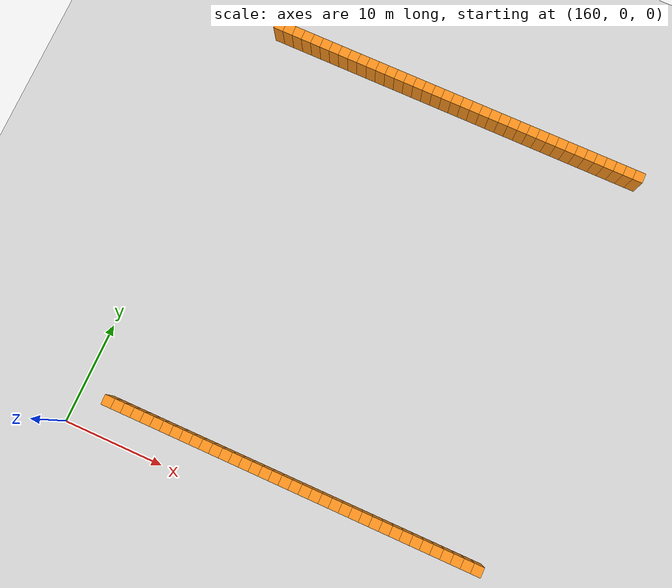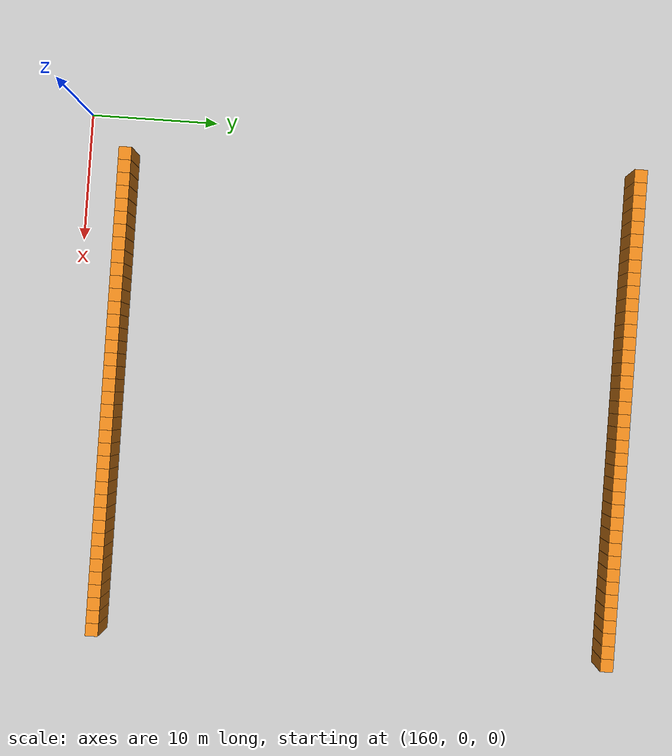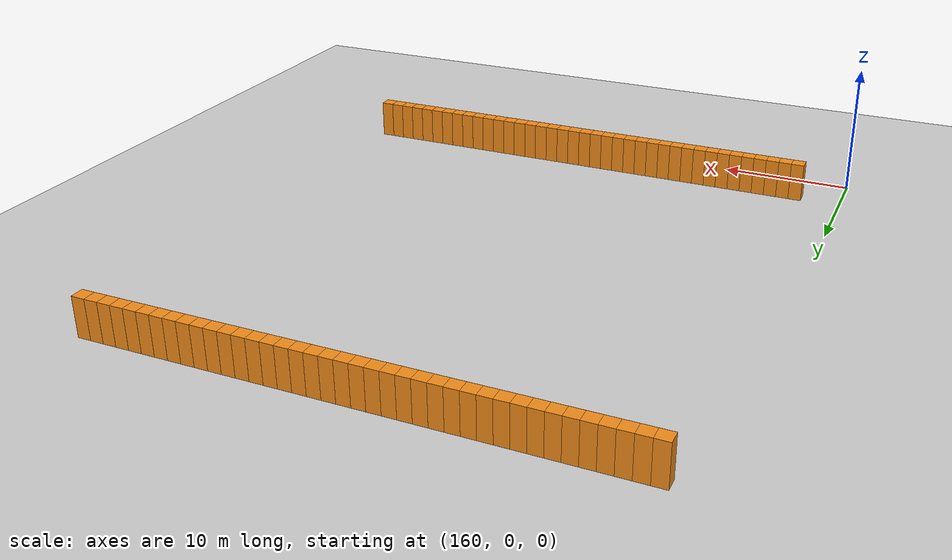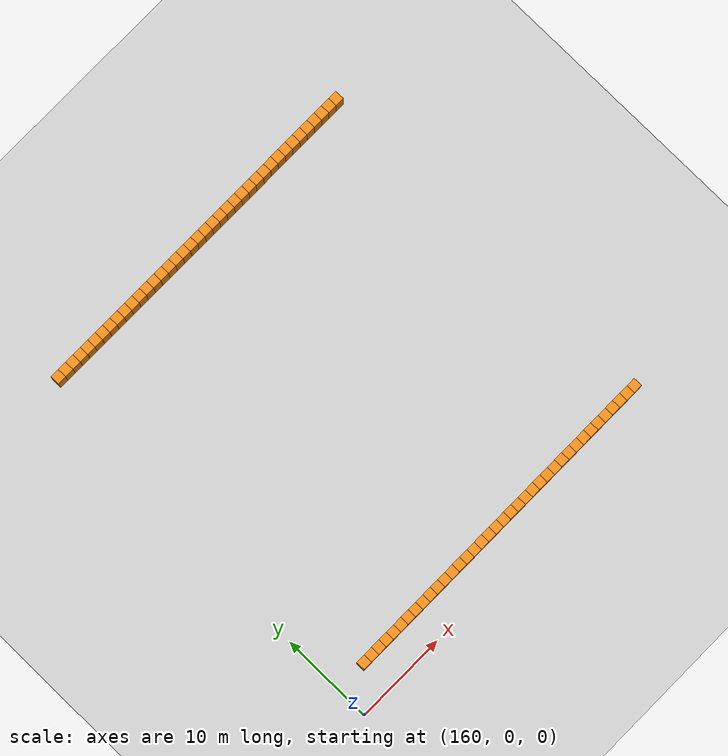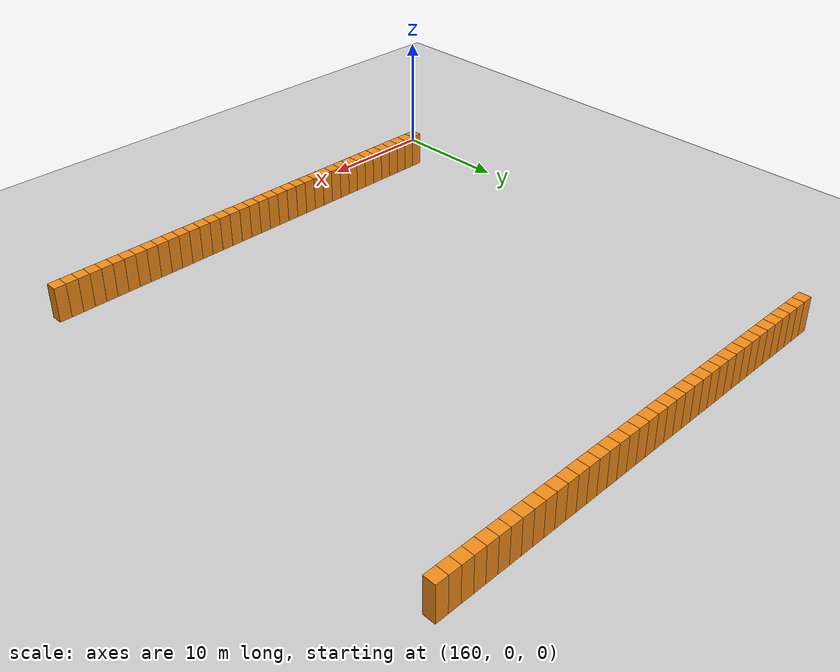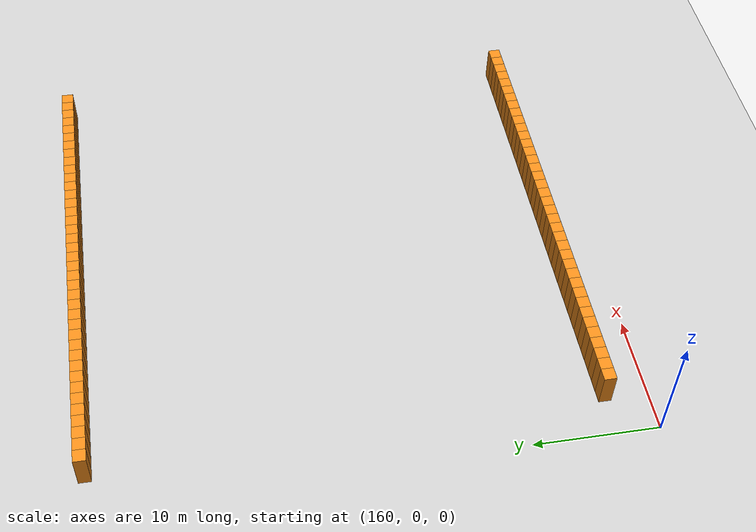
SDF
<sdf version="1.6">
 <world name="default">
  <include><uri>model://ground_plane</uri></include>
  <model name="unit_box_1692">
   <pose>162.50    43.50     1.50 0 0 0</pose>
   <static>1</static>
   <link name="link">
    <inertial>
     <mass>5000</mass>
     <inertia><ixx>200</ixx><ixy>0</ixy><ixz>0</ixz><iyy>200</iyy><iyz>0</iyz><izz>200</izz></inertia>
    </inertial>
    <collision name="collision"><geometry><box><size>1 1 3</size></box></geometry></collision>
    <visual name="visual">
     <geometry><box><size>1 1 3</size></box></geometry>
     <material>
      <script><name>Gazebo/Orange</name><uri>file://media/materials/scripts/gazebo.material</uri></script>
     </material>
    </visual>
   </link>
  </model>
  <model name="unit_box_1699">
   <pose>163.50     3.50     1.50 0 0 0</pose>
   <static>1</static>
   <link name="link">
    <inertial>
     <mass>5000</mass>
     <inertia><ixx>200</ixx><ixy>0</ixy><ixz>0</ixz><iyy>200</iyy><iyz>0</iyz><izz>200</izz></inertia>
    </inertial>
    <collision name="collision"><geometry><box><size>1 1 3</size></box></geometry></collision>
    <visual name="visual">
     <geometry><box><size>1 1 3</size></box></geometry>
     <material>
      <script><name>Gazebo/Orange</name><uri>file://media/materials/scripts/gazebo.material</uri></script>
     </material>
    </visual>
   </link>
  </model>
  <model name="unit_box_1700">
   <pose>163.50    43.50     1.50 0 0 0</pose>
   <static>1</static>
   <link name="link">
    <inertial>
     <mass>5000</mass>
     <inertia><ixx>200</ixx><ixy>0</ixy><ixz>0</ixz><iyy>200</iyy><iyz>0</iyz><izz>200</izz></inertia>
    </inertial>
    <collision name="collision"><geometry><box><size>1 1 3</size></box></geometry></collision>
    <visual name="visual">
     <geometry><box><size>1 1 3</size></box></geometry>
     <material>
      <script><name>Gazebo/Orange</name><uri>file://media/materials/scripts/gazebo.material</uri></script>
     </material>
    </visual>
   </link>
  </model>
  <model name="unit_box_1707">
   <pose>164.50     3.50     1.50 0 0 0</pose>
   <static>1</static>
   <link name="link">
    <inertial>
     <mass>5000</mass>
     <inertia><ixx>200</ixx><ixy>0</ixy><ixz>0</ixz><iyy>200</iyy><iyz>0</iyz><izz>200</izz></inertia>
    </inertial>
    <collision name="collision"><geometry><box><size>1 1 3</size></box></geometry></collision>
    <visual name="visual">
     <geometry><box><size>1 1 3</size></box></geometry>
     <material>
      <script><name>Gazebo/Orange</name><uri>file://media/materials/scripts/gazebo.material</uri></script>
     </material>
    </visual>
   </link>
  </model>
  <model name="unit_box_1708">
   <pose>164.50    43.50     1.50 0 0 0</pose>
   <static>1</static>
   <link name="link">
    <inertial>
     <mass>5000</mass>
     <inertia><ixx>200</ixx><ixy>0</ixy><ixz>0</ixz><iyy>200</iyy><iyz>0</iyz><izz>200</izz></inertia>
    </inertial>
    <collision name="collision"><geometry><box><size>1 1 3</size></box></geometry></collision>
    <visual name="visual">
     <geometry><box><size>1 1 3</size></box></geometry>
     <material>
      <script><name>Gazebo/Orange</name><uri>file://media/materials/scripts/gazebo.material</uri></script>
     </material>
    </visual>
   </link>
  </model>
  <model name="unit_box_1715">
   <pose>165.50     3.50     1.50 0 0 0</pose>
   <static>1</static>
   <link name="link">
    <inertial>
     <mass>5000</mass>
     <inertia><ixx>200</ixx><ixy>0</ixy><ixz>0</ixz><iyy>200</iyy><iyz>0</iyz><izz>200</izz></inertia>
    </inertial>
    <collision name="collision"><geometry><box><size>1 1 3</size></box></geometry></collision>
    <visual name="visual">
     <geometry><box><size>1 1 3</size></box></geometry>
     <material>
      <script><name>Gazebo/Orange</name><uri>file://media/materials/scripts/gazebo.material</uri></script>
     </material>
    </visual>
   </link>
  </model>
  <model name="unit_box_1716">
   <pose>165.50    43.50     1.50 0 0 0</pose>
   <static>1</static>
   <link name="link">
    <inertial>
     <mass>5000</mass>
     <inertia><ixx>200</ixx><ixy>0</ixy><ixz>0</ixz><iyy>200</iyy><iyz>0</iyz><izz>200</izz></inertia>
    </inertial>
    <collision name="collision"><geometry><box><size>1 1 3</size></box></geometry></collision>
    <visual name="visual">
     <geometry><box><size>1 1 3</size></box></geometry>
     <material>
      <script><name>Gazebo/Orange</name><uri>file://media/materials/scripts/gazebo.material</uri></script>
     </material>
    </visual>
   </link>
  </model>
  <model name="unit_box_1722">
   <pose>166.50     3.50     1.50 0 0 0</pose>
   <static>1</static>
   <link name="link">
    <inertial>
     <mass>5000</mass>
     <inertia><ixx>200</ixx><ixy>0</ixy><ixz>0</ixz><iyy>200</iyy><iyz>0</iyz><izz>200</izz></inertia>
    </inertial>
    <collision name="collision"><geometry><box><size>1 1 3</size></box></geometry></collision>
    <visual name="visual">
     <geometry><box><size>1 1 3</size></box></geometry>
     <material>
      <script><name>Gazebo/Orange</name><uri>file://media/materials/scripts/gazebo.material</uri></script>
     </material>
    </visual>
   </link>
  </model>
  <model name="unit_box_1723">
   <pose>166.50    43.50     1.50 0 0 0</pose>
   <static>1</static>
   <link name="link">
    <inertial>
     <mass>5000</mass>
     <inertia><ixx>200</ixx><ixy>0</ixy><ixz>0</ixz><iyy>200</iyy><iyz>0</iyz><izz>200</izz></inertia>
    </inertial>
    <collision name="collision"><geometry><box><size>1 1 3</size></box></geometry></collision>
    <visual name="visual">
     <geometry><box><size>1 1 3</size></box></geometry>
     <material>
      <script><name>Gazebo/Orange</name><uri>file://media/materials/scripts/gazebo.material</uri></script>
     </material>
    </visual>
   </link>
  </model>
  <model name="unit_box_1728">
   <pose>167.50     3.50     1.50 0 0 0</pose>
   <static>1</static>
   <link name="link">
    <inertial>
     <mass>5000</mass>
     <inertia><ixx>200</ixx><ixy>0</ixy><ixz>0</ixz><iyy>200</iyy><iyz>0</iyz><izz>200</izz></inertia>
    </inertial>
    <collision name="collision"><geometry><box><size>1 1 3</size></box></geometry></collision>
    <visual name="visual">
     <geometry><box><size>1 1 3</size></box></geometry>
     <material>
      <script><name>Gazebo/Orange</name><uri>file://media/materials/scripts/gazebo.material</uri></script>
     </material>
    </visual>
   </link>
  </model>
  <model name="unit_box_1729">
   <pose>167.50    43.50     1.50 0 0 0</pose>
   <static>1</static>
   <link name="link">
    <inertial>
     <mass>5000</mass>
     <inertia><ixx>200</ixx><ixy>0</ixy><ixz>0</ixz><iyy>200</iyy><iyz>0</iyz><izz>200</izz></inertia>
    </inertial>
    <collision name="collision"><geometry><box><size>1 1 3</size></box></geometry></collision>
    <visual name="visual">
     <geometry><box><size>1 1 3</size></box></geometry>
     <material>
      <script><name>Gazebo/Orange</name><uri>file://media/materials/scripts/gazebo.material</uri></script>
     </material>
    </visual>
   </link>
  </model>
  <model name="unit_box_1734">
   <pose>168.50     3.50     1.50 0 0 0</pose>
   <static>1</static>
   <link name="link">
    <inertial>
     <mass>5000</mass>
     <inertia><ixx>200</ixx><ixy>0</ixy><ixz>0</ixz><iyy>200</iyy><iyz>0</iyz><izz>200</izz></inertia>
    </inertial>
    <collision name="collision"><geometry><box><size>1 1 3</size></box></geometry></collision>
    <visual name="visual">
     <geometry><box><size>1 1 3</size></box></geometry>
     <material>
      <script><name>Gazebo/Orange</name><uri>file://media/materials/scripts/gazebo.material</uri></script>
     </material>
    </visual>
   </link>
  </model>
  <model name="unit_box_1735">
   <pose>168.50    43.50     1.50 0 0 0</pose>
   <static>1</static>
   <link name="link">
    <inertial>
     <mass>5000</mass>
     <inertia><ixx>200</ixx><ixy>0</ixy><ixz>0</ixz><iyy>200</iyy><iyz>0</iyz><izz>200</izz></inertia>
    </inertial>
    <collision name="collision"><geometry><box><size>1 1 3</size></box></geometry></collision>
    <visual name="visual">
     <geometry><box><size>1 1 3</size></box></geometry>
     <material>
      <script><name>Gazebo/Orange</name><uri>file://media/materials/scripts/gazebo.material</uri></script>
     </material>
    </visual>
   </link>
  </model>
  <model name="unit_box_1740">
   <pose>169.50     3.50     1.50 0 0 0</pose>
   <static>1</static>
   <link name="link">
    <inertial>
     <mass>5000</mass>
     <inertia><ixx>200</ixx><ixy>0</ixy><ixz>0</ixz><iyy>200</iyy><iyz>0</iyz><izz>200</izz></inertia>
    </inertial>
    <collision name="collision"><geometry><box><size>1 1 3</size></box></geometry></collision>
    <visual name="visual">
     <geometry><box><size>1 1 3</size></box></geometry>
     <material>
      <script><name>Gazebo/Orange</name><uri>file://media/materials/scripts/gazebo.material</uri></script>
     </material>
    </visual>
   </link>
  </model>
  <model name="unit_box_1741">
   <pose>169.50    43.50     1.50 0 0 0</pose>
   <static>1</static>
   <link name="link">
    <inertial>
     <mass>5000</mass>
     <inertia><ixx>200</ixx><ixy>0</ixy><ixz>0</ixz><iyy>200</iyy><iyz>0</iyz><izz>200</izz></inertia>
    </inertial>
    <collision name="collision"><geometry><box><size>1 1 3</size></box></geometry></collision>
    <visual name="visual">
     <geometry><box><size>1 1 3</size></box></geometry>
     <material>
      <script><name>Gazebo/Orange</name><uri>file://media/materials/scripts/gazebo.material</uri></script>
     </material>
    </visual>
   </link>
  </model>
  <model name="unit_box_1747">
   <pose>170.50     3.50     1.50 0 0 0</pose>
   <static>1</static>
   <link name="link">
    <inertial>
     <mass>5000</mass>
     <inertia><ixx>200</ixx><ixy>0</ixy><ixz>0</ixz><iyy>200</iyy><iyz>0</iyz><izz>200</izz></inertia>
    </inertial>
    <collision name="collision"><geometry><box><size>1 1 3</size></box></geometry></collision>
    <visual name="visual">
     <geometry><box><size>1 1 3</size></box></geometry>
     <material>
      <script><name>Gazebo/Orange</name><uri>file://media/materials/scripts/gazebo.material</uri></script>
     </material>
    </visual>
   </link>
  </model>
  <model name="unit_box_1748">
   <pose>170.50    43.50     1.50 0 0 0</pose>
   <static>1</static>
   <link name="link">
    <inertial>
     <mass>5000</mass>
     <inertia><ixx>200</ixx><ixy>0</ixy><ixz>0</ixz><iyy>200</iyy><iyz>0</iyz><izz>200</izz></inertia>
    </inertial>
    <collision name="collision"><geometry><box><size>1 1 3</size></box></geometry></collision>
    <visual name="visual">
     <geometry><box><size>1 1 3</size></box></geometry>
     <material>
      <script><name>Gazebo/Orange</name><uri>file://media/materials/scripts/gazebo.material</uri></script>
     </material>
    </visual>
   </link>
  </model>
  <model name="unit_box_1754">
   <pose>171.50     3.50     1.50 0 0 0</pose>
   <static>1</static>
   <link name="link">
    <inertial>
     <mass>5000</mass>
     <inertia><ixx>200</ixx><ixy>0</ixy><ixz>0</ixz><iyy>200</iyy><iyz>0</iyz><izz>200</izz></inertia>
    </inertial>
    <collision name="collision"><geometry><box><size>1 1 3</size></box></geometry></collision>
    <visual name="visual">
     <geometry><box><size>1 1 3</size></box></geometry>
     <material>
      <script><name>Gazebo/Orange</name><uri>file://media/materials/scripts/gazebo.material</uri></script>
     </material>
    </visual>
   </link>
  </model>
  <model name="unit_box_1755">
   <pose>171.50    43.50     1.50 0 0 0</pose>
   <static>1</static>
   <link name="link">
    <inertial>
     <mass>5000</mass>
     <inertia><ixx>200</ixx><ixy>0</ixy><ixz>0</ixz><iyy>200</iyy><iyz>0</iyz><izz>200</izz></inertia>
    </inertial>
    <collision name="collision"><geometry><box><size>1 1 3</size></box></geometry></collision>
    <visual name="visual">
     <geometry><box><size>1 1 3</size></box></geometry>
     <material>
      <script><name>Gazebo/Orange</name><uri>file://media/materials/scripts/gazebo.material</uri></script>
     </material>
    </visual>
   </link>
  </model>
  <model name="unit_box_1761">
   <pose>172.50     3.50     1.50 0 0 0</pose>
   <static>1</static>
   <link name="link">
    <inertial>
     <mass>5000</mass>
     <inertia><ixx>200</ixx><ixy>0</ixy><ixz>0</ixz><iyy>200</iyy><iyz>0</iyz><izz>200</izz></inertia>
    </inertial>
    <collision name="collision"><geometry><box><size>1 1 3</size></box></geometry></collision>
    <visual name="visual">
     <geometry><box><size>1 1 3</size></box></geometry>
     <material>
      <script><name>Gazebo/Orange</name><uri>file://media/materials/scripts/gazebo.material</uri></script>
     </material>
    </visual>
   </link>
  </model>
  <model name="unit_box_1762">
   <pose>172.50    43.50     1.50 0 0 0</pose>
   <static>1</static>
   <link name="link">
    <inertial>
     <mass>5000</mass>
     <inertia><ixx>200</ixx><ixy>0</ixy><ixz>0</ixz><iyy>200</iyy><iyz>0</iyz><izz>200</izz></inertia>
    </inertial>
    <collision name="collision"><geometry><box><size>1 1 3</size></box></geometry></collision>
    <visual name="visual">
     <geometry><box><size>1 1 3</size></box></geometry>
     <material>
      <script><name>Gazebo/Orange</name><uri>file://media/materials/scripts/gazebo.material</uri></script>
     </material>
    </visual>
   </link>
  </model>
  <model name="unit_box_1768">
   <pose>173.50     3.50     1.50 0 0 0</pose>
   <static>1</static>
   <link name="link">
    <inertial>
     <mass>5000</mass>
     <inertia><ixx>200</ixx><ixy>0</ixy><ixz>0</ixz><iyy>200</iyy><iyz>0</iyz><izz>200</izz></inertia>
    </inertial>
    <collision name="collision"><geometry><box><size>1 1 3</size></box></geometry></collision>
    <visual name="visual">
     <geometry><box><size>1 1 3</size></box></geometry>
     <material>
      <script><name>Gazebo/Orange</name><uri>file://media/materials/scripts/gazebo.material</uri></script>
     </material>
    </visual>
   </link>
  </model>
  <model name="unit_box_1769">
   <pose>173.50    43.50     1.50 0 0 0</pose>
   <static>1</static>
   <link name="link">
    <inertial>
     <mass>5000</mass>
     <inertia><ixx>200</ixx><ixy>0</ixy><ixz>0</ixz><iyy>200</iyy><iyz>0</iyz><izz>200</izz></inertia>
    </inertial>
    <collision name="collision"><geometry><box><size>1 1 3</size></box></geometry></collision>
    <visual name="visual">
     <geometry><box><size>1 1 3</size></box></geometry>
     <material>
      <script><name>Gazebo/Orange</name><uri>file://media/materials/scripts/gazebo.material</uri></script>
     </material>
    </visual>
   </link>
  </model>
  <model name="unit_box_1775">
   <pose>174.50     3.50     1.50 0 0 0</pose>
   <static>1</static>
   <link name="link">
    <inertial>
     <mass>5000</mass>
     <inertia><ixx>200</ixx><ixy>0</ixy><ixz>0</ixz><iyy>200</iyy><iyz>0</iyz><izz>200</izz></inertia>
    </inertial>
    <collision name="collision"><geometry><box><size>1 1 3</size></box></geometry></collision>
    <visual name="visual">
     <geometry><box><size>1 1 3</size></box></geometry>
     <material>
      <script><name>Gazebo/Orange</name><uri>file://media/materials/scripts/gazebo.material</uri></script>
     </material>
    </visual>
   </link>
  </model>
  <model name="unit_box_1776">
   <pose>174.50    43.50     1.50 0 0 0</pose>
   <static>1</static>
   <link name="link">
    <inertial>
     <mass>5000</mass>
     <inertia><ixx>200</ixx><ixy>0</ixy><ixz>0</ixz><iyy>200</iyy><iyz>0</iyz><izz>200</izz></inertia>
    </inertial>
    <collision name="collision"><geometry><box><size>1 1 3</size></box></geometry></collision>
    <visual name="visual">
     <geometry><box><size>1 1 3</size></box></geometry>
     <material>
      <script><name>Gazebo/Orange</name><uri>file://media/materials/scripts/gazebo.material</uri></script>
     </material>
    </visual>
   </link>
  </model>
  <model name="unit_box_1782">
   <pose>175.50     3.50     1.50 0 0 0</pose>
   <static>1</static>
   <link name="link">
    <inertial>
     <mass>5000</mass>
     <inertia><ixx>200</ixx><ixy>0</ixy><ixz>0</ixz><iyy>200</iyy><iyz>0</iyz><izz>200</izz></inertia>
    </inertial>
    <collision name="collision"><geometry><box><size>1 1 3</size></box></geometry></collision>
    <visual name="visual">
     <geometry><box><size>1 1 3</size></box></geometry>
     <material>
      <script><name>Gazebo/Orange</name><uri>file://media/materials/scripts/gazebo.material</uri></script>
     </material>
    </visual>
   </link>
  </model>
  <model name="unit_box_1783">
   <pose>175.50    43.50     1.50 0 0 0</pose>
   <static>1</static>
   <link name="link">
    <inertial>
     <mass>5000</mass>
     <inertia><ixx>200</ixx><ixy>0</ixy><ixz>0</ixz><iyy>200</iyy><iyz>0</iyz><izz>200</izz></inertia>
    </inertial>
    <collision name="collision"><geometry><box><size>1 1 3</size></box></geometry></collision>
    <visual name="visual">
     <geometry><box><size>1 1 3</size></box></geometry>
     <material>
      <script><name>Gazebo/Orange</name><uri>file://media/materials/scripts/gazebo.material</uri></script>
     </material>
    </visual>
   </link>
  </model>
  <model name="unit_box_1789">
   <pose>176.50     3.50     1.50 0 0 0</pose>
   <static>1</static>
   <link name="link">
    <inertial>
     <mass>5000</mass>
     <inertia><ixx>200</ixx><ixy>0</ixy><ixz>0</ixz><iyy>200</iyy><iyz>0</iyz><izz>200</izz></inertia>
    </inertial>
    <collision name="collision"><geometry><box><size>1 1 3</size></box></geometry></collision>
    <visual name="visual">
     <geometry><box><size>1 1 3</size></box></geometry>
     <material>
      <script><name>Gazebo/Orange</name><uri>file://media/materials/scripts/gazebo.material</uri></script>
     </material>
    </visual>
   </link>
  </model>
  <model name="unit_box_1790">
   <pose>176.50    43.50     1.50 0 0 0</pose>
   <static>1</static>
   <link name="link">
    <inertial>
     <mass>5000</mass>
     <inertia><ixx>200</ixx><ixy>0</ixy><ixz>0</ixz><iyy>200</iyy><iyz>0</iyz><izz>200</izz></inertia>
    </inertial>
    <collision name="collision"><geometry><box><size>1 1 3</size></box></geometry></collision>
    <visual name="visual">
     <geometry><box><size>1 1 3</size></box></geometry>
     <material>
      <script><name>Gazebo/Orange</name><uri>file://media/materials/scripts/gazebo.material</uri></script>
     </material>
    </visual>
   </link>
  </model>
  <model name="unit_box_1796">
   <pose>177.50     3.50     1.50 0 0 0</pose>
   <static>1</static>
   <link name="link">
    <inertial>
     <mass>5000</mass>
     <inertia><ixx>200</ixx><ixy>0</ixy><ixz>0</ixz><iyy>200</iyy><iyz>0</iyz><izz>200</izz></inertia>
    </inertial>
    <collision name="collision"><geometry><box><size>1 1 3</size></box></geometry></collision>
    <visual name="visual">
     <geometry><box><size>1 1 3</size></box></geometry>
     <material>
      <script><name>Gazebo/Orange</name><uri>file://media/materials/scripts/gazebo.material</uri></script>
     </material>
    </visual>
   </link>
  </model>
  <model name="unit_box_1797">
   <pose>177.50    43.50     1.50 0 0 0</pose>
   <static>1</static>
   <link name="link">
    <inertial>
     <mass>5000</mass>
     <inertia><ixx>200</ixx><ixy>0</ixy><ixz>0</ixz><iyy>200</iyy><iyz>0</iyz><izz>200</izz></inertia>
    </inertial>
    <collision name="collision"><geometry><box><size>1 1 3</size></box></geometry></collision>
    <visual name="visual">
     <geometry><box><size>1 1 3</size></box></geometry>
     <material>
      <script><name>Gazebo/Orange</name><uri>file://media/materials/scripts/gazebo.material</uri></script>
     </material>
    </visual>
   </link>
  </model>
  <model name="unit_box_1803">
   <pose>178.50     3.50     1.50 0 0 0</pose>
   <static>1</static>
   <link name="link">
    <inertial>
     <mass>5000</mass>
     <inertia><ixx>200</ixx><ixy>0</ixy><ixz>0</ixz><iyy>200</iyy><iyz>0</iyz><izz>200</izz></inertia>
    </inertial>
    <collision name="collision"><geometry><box><size>1 1 3</size></box></geometry></collision>
    <visual name="visual">
     <geometry><box><size>1 1 3</size></box></geometry>
     <material>
      <script><name>Gazebo/Orange</name><uri>file://media/materials/scripts/gazebo.material</uri></script>
     </material>
    </visual>
   </link>
  </model>
  <model name="unit_box_1804">
   <pose>178.50    43.50     1.50 0 0 0</pose>
   <static>1</static>
   <link name="link">
    <inertial>
     <mass>5000</mass>
     <inertia><ixx>200</ixx><ixy>0</ixy><ixz>0</ixz><iyy>200</iyy><iyz>0</iyz><izz>200</izz></inertia>
    </inertial>
    <collision name="collision"><geometry><box><size>1 1 3</size></box></geometry></collision>
    <visual name="visual">
     <geometry><box><size>1 1 3</size></box></geometry>
     <material>
      <script><name>Gazebo/Orange</name><uri>file://media/materials/scripts/gazebo.material</uri></script>
     </material>
    </visual>
   </link>
  </model>
  <model name="unit_box_1811">
   <pose>179.50     3.50     1.50 0 0 0</pose>
   <static>1</static>
   <link name="link">
    <inertial>
     <mass>5000</mass>
     <inertia><ixx>200</ixx><ixy>0</ixy><ixz>0</ixz><iyy>200</iyy><iyz>0</iyz><izz>200</izz></inertia>
    </inertial>
    <collision name="collision"><geometry><box><size>1 1 3</size></box></geometry></collision>
    <visual name="visual">
     <geometry><box><size>1 1 3</size></box></geometry>
     <material>
      <script><name>Gazebo/Orange</name><uri>file://media/materials/scripts/gazebo.material</uri></script>
     </material>
    </visual>
   </link>
  </model>
  <model name="unit_box_1812">
   <pose>179.50    43.50     1.50 0 0 0</pose>
   <static>1</static>
   <link name="link">
    <inertial>
     <mass>5000</mass>
     <inertia><ixx>200</ixx><ixy>0</ixy><ixz>0</ixz><iyy>200</iyy><iyz>0</iyz><izz>200</izz></inertia>
    </inertial>
    <collision name="collision"><geometry><box><size>1 1 3</size></box></geometry></collision>
    <visual name="visual">
     <geometry><box><size>1 1 3</size></box></geometry>
     <material>
      <script><name>Gazebo/Orange</name><uri>file://media/materials/scripts/gazebo.material</uri></script>
     </material>
    </visual>
   </link>
  </model>
  <model name="unit_box_1819">
   <pose>180.50     3.50     1.50 0 0 0</pose>
   <static>1</static>
   <link name="link">
    <inertial>
     <mass>5000</mass>
     <inertia><ixx>200</ixx><ixy>0</ixy><ixz>0</ixz><iyy>200</iyy><iyz>0</iyz><izz>200</izz></inertia>
    </inertial>
    <collision name="collision"><geometry><box><size>1 1 3</size></box></geometry></collision>
    <visual name="visual">
     <geometry><box><size>1 1 3</size></box></geometry>
     <material>
      <script><name>Gazebo/Orange</name><uri>file://media/materials/scripts/gazebo.material</uri></script>
     </material>
    </visual>
   </link>
  </model>
  <model name="unit_box_1820">
   <pose>180.50    43.50     1.50 0 0 0</pose>
   <static>1</static>
   <link name="link">
    <inertial>
     <mass>5000</mass>
     <inertia><ixx>200</ixx><ixy>0</ixy><ixz>0</ixz><iyy>200</iyy><iyz>0</iyz><izz>200</izz></inertia>
    </inertial>
    <collision name="collision"><geometry><box><size>1 1 3</size></box></geometry></collision>
    <visual name="visual">
     <geometry><box><size>1 1 3</size></box></geometry>
     <material>
      <script><name>Gazebo/Orange</name><uri>file://media/materials/scripts/gazebo.material</uri></script>
     </material>
    </visual>
   </link>
  </model>
  <model name="unit_box_1828">
   <pose>181.50     3.50     1.50 0 0 0</pose>
   <static>1</static>
   <link name="link">
    <inertial>
     <mass>5000</mass>
     <inertia><ixx>200</ixx><ixy>0</ixy><ixz>0</ixz><iyy>200</iyy><iyz>0</iyz><izz>200</izz></inertia>
    </inertial>
    <collision name="collision"><geometry><box><size>1 1 3</size></box></geometry></collision>
    <visual name="visual">
     <geometry><box><size>1 1 3</size></box></geometry>
     <material>
      <script><name>Gazebo/Orange</name><uri>file://media/materials/scripts/gazebo.material</uri></script>
     </material>
    </visual>
   </link>
  </model>
  <model name="unit_box_1829">
   <pose>181.50    43.50     1.50 0 0 0</pose>
   <static>1</static>
   <link name="link">
    <inertial>
     <mass>5000</mass>
     <inertia><ixx>200</ixx><ixy>0</ixy><ixz>0</ixz><iyy>200</iyy><iyz>0</iyz><izz>200</izz></inertia>
    </inertial>
    <collision name="collision"><geometry><box><size>1 1 3</size></box></geometry></collision>
    <visual name="visual">
     <geometry><box><size>1 1 3</size></box></geometry>
     <material>
      <script><name>Gazebo/Orange</name><uri>file://media/materials/scripts/gazebo.material</uri></script>
     </material>
    </visual>
   </link>
  </model>
  <model name="unit_box_1838">
   <pose>182.50     3.50     1.50 0 0 0</pose>
   <static>1</static>
   <link name="link">
    <inertial>
     <mass>5000</mass>
     <inertia><ixx>200</ixx><ixy>0</ixy><ixz>0</ixz><iyy>200</iyy><iyz>0</iyz><izz>200</izz></inertia>
    </inertial>
    <collision name="collision"><geometry><box><size>1 1 3</size></box></geometry></collision>
    <visual name="visual">
     <geometry><box><size>1 1 3</size></box></geometry>
     <material>
      <script><name>Gazebo/Orange</name><uri>file://media/materials/scripts/gazebo.material</uri></script>
     </material>
    </visual>
   </link>
  </model>
  <model name="unit_box_1839">
   <pose>182.50    43.50     1.50 0 0 0</pose>
   <static>1</static>
   <link name="link">
    <inertial>
     <mass>5000</mass>
     <inertia><ixx>200</ixx><ixy>0</ixy><ixz>0</ixz><iyy>200</iyy><iyz>0</iyz><izz>200</izz></inertia>
    </inertial>
    <collision name="collision"><geometry><box><size>1 1 3</size></box></geometry></collision>
    <visual name="visual">
     <geometry><box><size>1 1 3</size></box></geometry>
     <material>
      <script><name>Gazebo/Orange</name><uri>file://media/materials/scripts/gazebo.material</uri></script>
     </material>
    </visual>
   </link>
  </model>
  <model name="unit_box_1847">
   <pose>183.50     3.50     1.50 0 0 0</pose>
   <static>1</static>
   <link name="link">
    <inertial>
     <mass>5000</mass>
     <inertia><ixx>200</ixx><ixy>0</ixy><ixz>0</ixz><iyy>200</iyy><iyz>0</iyz><izz>200</izz></inertia>
    </inertial>
    <collision name="collision"><geometry><box><size>1 1 3</size></box></geometry></collision>
    <visual name="visual">
     <geometry><box><size>1 1 3</size></box></geometry>
     <material>
      <script><name>Gazebo/Orange</name><uri>file://media/materials/scripts/gazebo.material</uri></script>
     </material>
    </visual>
   </link>
  </model>
  <model name="unit_box_1848">
   <pose>183.50    43.50     1.50 0 0 0</pose>
   <static>1</static>
   <link name="link">
    <inertial>
     <mass>5000</mass>
     <inertia><ixx>200</ixx><ixy>0</ixy><ixz>0</ixz><iyy>200</iyy><iyz>0</iyz><izz>200</izz></inertia>
    </inertial>
    <collision name="collision"><geometry><box><size>1 1 3</size></box></geometry></collision>
    <visual name="visual">
     <geometry><box><size>1 1 3</size></box></geometry>
     <material>
      <script><name>Gazebo/Orange</name><uri>file://media/materials/scripts/gazebo.material</uri></script>
     </material>
    </visual>
   </link>
  </model>
  <model name="unit_box_1856">
   <pose>184.50     3.50     1.50 0 0 0</pose>
   <static>1</static>
   <link name="link">
    <inertial>
     <mass>5000</mass>
     <inertia><ixx>200</ixx><ixy>0</ixy><ixz>0</ixz><iyy>200</iyy><iyz>0</iyz><izz>200</izz></inertia>
    </inertial>
    <collision name="collision"><geometry><box><size>1 1 3</size></box></geometry></collision>
    <visual name="visual">
     <geometry><box><size>1 1 3</size></box></geometry>
     <material>
      <script><name>Gazebo/Orange</name><uri>file://media/materials/scripts/gazebo.material</uri></script>
     </material>
    </visual>
   </link>
  </model>
  <model name="unit_box_1857">
   <pose>184.50    43.50     1.50 0 0 0</pose>
   <static>1</static>
   <link name="link">
    <inertial>
     <mass>5000</mass>
     <inertia><ixx>200</ixx><ixy>0</ixy><ixz>0</ixz><iyy>200</iyy><iyz>0</iyz><izz>200</izz></inertia>
    </inertial>
    <collision name="collision"><geometry><box><size>1 1 3</size></box></geometry></collision>
    <visual name="visual">
     <geometry><box><size>1 1 3</size></box></geometry>
     <material>
      <script><name>Gazebo/Orange</name><uri>file://media/materials/scripts/gazebo.material</uri></script>
     </material>
    </visual>
   </link>
  </model>
  <model name="unit_box_1865">
   <pose>185.50     3.50     1.50 0 0 0</pose>
   <static>1</static>
   <link name="link">
    <inertial>
     <mass>5000</mass>
     <inertia><ixx>200</ixx><ixy>0</ixy><ixz>0</ixz><iyy>200</iyy><iyz>0</iyz><izz>200</izz></inertia>
    </inertial>
    <collision name="collision"><geometry><box><size>1 1 3</size></box></geometry></collision>
    <visual name="visual">
     <geometry><box><size>1 1 3</size></box></geometry>
     <material>
      <script><name>Gazebo/Orange</name><uri>file://media/materials/scripts/gazebo.material</uri></script>
     </material>
    </visual>
   </link>
  </model>
  <model name="unit_box_1866">
   <pose>185.50    43.50     1.50 0 0 0</pose>
   <static>1</static>
   <link name="link">
    <inertial>
     <mass>5000</mass>
     <inertia><ixx>200</ixx><ixy>0</ixy><ixz>0</ixz><iyy>200</iyy><iyz>0</iyz><izz>200</izz></inertia>
    </inertial>
    <collision name="collision"><geometry><box><size>1 1 3</size></box></geometry></collision>
    <visual name="visual">
     <geometry><box><size>1 1 3</size></box></geometry>
     <material>
      <script><name>Gazebo/Orange</name><uri>file://media/materials/scripts/gazebo.material</uri></script>
     </material>
    </visual>
   </link>
  </model>
  <model name="unit_box_1873">
   <pose>186.50     3.50     1.50 0 0 0</pose>
   <static>1</static>
   <link name="link">
    <inertial>
     <mass>5000</mass>
     <inertia><ixx>200</ixx><ixy>0</ixy><ixz>0</ixz><iyy>200</iyy><iyz>0</iyz><izz>200</izz></inertia>
    </inertial>
    <collision name="collision"><geometry><box><size>1 1 3</size></box></geometry></collision>
    <visual name="visual">
     <geometry><box><size>1 1 3</size></box></geometry>
     <material>
      <script><name>Gazebo/Orange</name><uri>file://media/materials/scripts/gazebo.material</uri></script>
     </material>
    </visual>
   </link>
  </model>
  <model name="unit_box_1874">
   <pose>186.50    43.50     1.50 0 0 0</pose>
   <static>1</static>
   <link name="link">
    <inertial>
     <mass>5000</mass>
     <inertia><ixx>200</ixx><ixy>0</ixy><ixz>0</ixz><iyy>200</iyy><iyz>0</iyz><izz>200</izz></inertia>
    </inertial>
    <collision name="collision"><geometry><box><size>1 1 3</size></box></geometry></collision>
    <visual name="visual">
     <geometry><box><size>1 1 3</size></box></geometry>
     <material>
      <script><name>Gazebo/Orange</name><uri>file://media/materials/scripts/gazebo.material</uri></script>
     </material>
    </visual>
   </link>
  </model>
  <model name="unit_box_1881">
   <pose>187.50     3.50     1.50 0 0 0</pose>
   <static>1</static>
   <link name="link">
    <inertial>
     <mass>5000</mass>
     <inertia><ixx>200</ixx><ixy>0</ixy><ixz>0</ixz><iyy>200</iyy><iyz>0</iyz><izz>200</izz></inertia>
    </inertial>
    <collision name="collision"><geometry><box><size>1 1 3</size></box></geometry></collision>
    <visual name="visual">
     <geometry><box><size>1 1 3</size></box></geometry>
     <material>
      <script><name>Gazebo/Orange</name><uri>file://media/materials/scripts/gazebo.material</uri></script>
     </material>
    </visual>
   </link>
  </model>
  <model name="unit_box_1882">
   <pose>187.50    43.50     1.50 0 0 0</pose>
   <static>1</static>
   <link name="link">
    <inertial>
     <mass>5000</mass>
     <inertia><ixx>200</ixx><ixy>0</ixy><ixz>0</ixz><iyy>200</iyy><iyz>0</iyz><izz>200</izz></inertia>
    </inertial>
    <collision name="collision"><geometry><box><size>1 1 3</size></box></geometry></collision>
    <visual name="visual">
     <geometry><box><size>1 1 3</size></box></geometry>
     <material>
      <script><name>Gazebo/Orange</name><uri>file://media/materials/scripts/gazebo.material</uri></script>
     </material>
    </visual>
   </link>
  </model>
  <model name="unit_box_1889">
   <pose>188.50     3.50     1.50 0 0 0</pose>
   <static>1</static>
   <link name="link">
    <inertial>
     <mass>5000</mass>
     <inertia><ixx>200</ixx><ixy>0</ixy><ixz>0</ixz><iyy>200</iyy><iyz>0</iyz><izz>200</izz></inertia>
    </inertial>
    <collision name="collision"><geometry><box><size>1 1 3</size></box></geometry></collision>
    <visual name="visual">
     <geometry><box><size>1 1 3</size></box></geometry>
     <material>
      <script><name>Gazebo/Orange</name><uri>file://media/materials/scripts/gazebo.material</uri></script>
     </material>
    </visual>
   </link>
  </model>
  <model name="unit_box_1890">
   <pose>188.50    43.50     1.50 0 0 0</pose>
   <static>1</static>
   <link name="link">
    <inertial>
     <mass>5000</mass>
     <inertia><ixx>200</ixx><ixy>0</ixy><ixz>0</ixz><iyy>200</iyy><iyz>0</iyz><izz>200</izz></inertia>
    </inertial>
    <collision name="collision"><geometry><box><size>1 1 3</size></box></geometry></collision>
    <visual name="visual">
     <geometry><box><size>1 1 3</size></box></geometry>
     <material>
      <script><name>Gazebo/Orange</name><uri>file://media/materials/scripts/gazebo.material</uri></script>
     </material>
    </visual>
   </link>
  </model>
  <model name="unit_box_1897">
   <pose>189.50     3.50     1.50 0 0 0</pose>
   <static>1</static>
   <link name="link">
    <inertial>
     <mass>5000</mass>
     <inertia><ixx>200</ixx><ixy>0</ixy><ixz>0</ixz><iyy>200</iyy><iyz>0</iyz><izz>200</izz></inertia>
    </inertial>
    <collision name="collision"><geometry><box><size>1 1 3</size></box></geometry></collision>
    <visual name="visual">
     <geometry><box><size>1 1 3</size></box></geometry>
     <material>
      <script><name>Gazebo/Orange</name><uri>file://media/materials/scripts/gazebo.material</uri></script>
     </material>
    </visual>
   </link>
  </model>
  <model name="unit_box_1898">
   <pose>189.50    43.50     1.50 0 0 0</pose>
   <static>1</static>
   <link name="link">
    <inertial>
     <mass>5000</mass>
     <inertia><ixx>200</ixx><ixy>0</ixy><ixz>0</ixz><iyy>200</iyy><iyz>0</iyz><izz>200</izz></inertia>
    </inertial>
    <collision name="collision"><geometry><box><size>1 1 3</size></box></geometry></collision>
    <visual name="visual">
     <geometry><box><size>1 1 3</size></box></geometry>
     <material>
      <script><name>Gazebo/Orange</name><uri>file://media/materials/scripts/gazebo.material</uri></script>
     </material>
    </visual>
   </link>
  </model>
  <model name="unit_box_1905">
   <pose>190.50     3.50     1.50 0 0 0</pose>
   <static>1</static>
   <link name="link">
    <inertial>
     <mass>5000</mass>
     <inertia><ixx>200</ixx><ixy>0</ixy><ixz>0</ixz><iyy>200</iyy><iyz>0</iyz><izz>200</izz></inertia>
    </inertial>
    <collision name="collision"><geometry><box><size>1 1 3</size></box></geometry></collision>
    <visual name="visual">
     <geometry><box><size>1 1 3</size></box></geometry>
     <material>
      <script><name>Gazebo/Orange</name><uri>file://media/materials/scripts/gazebo.material</uri></script>
     </material>
    </visual>
   </link>
  </model>
  <model name="unit_box_1906">
   <pose>190.50    43.50     1.50 0 0 0</pose>
   <static>1</static>
   <link name="link">
    <inertial>
     <mass>5000</mass>
     <inertia><ixx>200</ixx><ixy>0</ixy><ixz>0</ixz><iyy>200</iyy><iyz>0</iyz><izz>200</izz></inertia>
    </inertial>
    <collision name="collision"><geometry><box><size>1 1 3</size></box></geometry></collision>
    <visual name="visual">
     <geometry><box><size>1 1 3</size></box></geometry>
     <material>
      <script><name>Gazebo/Orange</name><uri>file://media/materials/scripts/gazebo.material</uri></script>
     </material>
    </visual>
   </link>
  </model>
  <model name="unit_box_1913">
   <pose>191.50     3.50     1.50 0 0 0</pose>
   <static>1</static>
   <link name="link">
    <inertial>
     <mass>5000</mass>
     <inertia><ixx>200</ixx><ixy>0</ixy><ixz>0</ixz><iyy>200</iyy><iyz>0</iyz><izz>200</izz></inertia>
    </inertial>
    <collision name="collision"><geometry><box><size>1 1 3</size></box></geometry></collision>
    <visual name="visual">
     <geometry><box><size>1 1 3</size></box></geometry>
     <material>
      <script><name>Gazebo/Orange</name><uri>file://media/materials/scripts/gazebo.material</uri></script>
     </material>
    </visual>
   </link>
  </model>
  <model name="unit_box_1914">
   <pose>191.50    43.50     1.50 0 0 0</pose>
   <static>1</static>
   <link name="link">
    <inertial>
     <mass>5000</mass>
     <inertia><ixx>200</ixx><ixy>0</ixy><ixz>0</ixz><iyy>200</iyy><iyz>0</iyz><izz>200</izz></inertia>
    </inertial>
    <collision name="collision"><geometry><box><size>1 1 3</size></box></geometry></collision>
    <visual name="visual">
     <geometry><box><size>1 1 3</size></box></geometry>
     <material>
      <script><name>Gazebo/Orange</name><uri>file://media/materials/scripts/gazebo.material</uri></script>
     </material>
    </visual>
   </link>
  </model>
  <model name="unit_box_1921">
   <pose>192.50     3.50     1.50 0 0 0</pose>
   <static>1</static>
   <link name="link">
    <inertial>
     <mass>5000</mass>
     <inertia><ixx>200</ixx><ixy>0</ixy><ixz>0</ixz><iyy>200</iyy><iyz>0</iyz><izz>200</izz></inertia>
    </inertial>
    <collision name="collision"><geometry><box><size>1 1 3</size></box></geometry></collision>
    <visual name="visual">
     <geometry><box><size>1 1 3</size></box></geometry>
     <material>
      <script><name>Gazebo/Orange</name><uri>file://media/materials/scripts/gazebo.material</uri></script>
     </material>
    </visual>
   </link>
  </model>
  <model name="unit_box_1922">
   <pose>192.50    43.50     1.50 0 0 0</pose>
   <static>1</static>
   <link name="link">
    <inertial>
     <mass>5000</mass>
     <inertia><ixx>200</ixx><ixy>0</ixy><ixz>0</ixz><iyy>200</iyy><iyz>0</iyz><izz>200</izz></inertia>
    </inertial>
    <collision name="collision"><geometry><box><size>1 1 3</size></box></geometry></collision>
    <visual name="visual">
     <geometry><box><size>1 1 3</size></box></geometry>
     <material>
      <script><name>Gazebo/Orange</name><uri>file://media/materials/scripts/gazebo.material</uri></script>
     </material>
    </visual>
   </link>
  </model>
  <model name="unit_box_1930">
   <pose>193.50     3.50     1.50 0 0 0</pose>
   <static>1</static>
   <link name="link">
    <inertial>
     <mass>5000</mass>
     <inertia><ixx>200</ixx><ixy>0</ixy><ixz>0</ixz><iyy>200</iyy><iyz>0</iyz><izz>200</izz></inertia>
    </inertial>
    <collision name="collision"><geometry><box><size>1 1 3</size></box></geometry></collision>
    <visual name="visual">
     <geometry><box><size>1 1 3</size></box></geometry>
     <material>
      <script><name>Gazebo/Orange</name><uri>file://media/materials/scripts/gazebo.material</uri></script>
     </material>
    </visual>
   </link>
  </model>
  <model name="unit_box_1931">
   <pose>193.50    43.50     1.50 0 0 0</pose>
   <static>1</static>
   <link name="link">
    <inertial>
     <mass>5000</mass>
     <inertia><ixx>200</ixx><ixy>0</ixy><ixz>0</ixz><iyy>200</iyy><iyz>0</iyz><izz>200</izz></inertia>
    </inertial>
    <collision name="collision"><geometry><box><size>1 1 3</size></box></geometry></collision>
    <visual name="visual">
     <geometry><box><size>1 1 3</size></box></geometry>
     <material>
      <script><name>Gazebo/Orange</name><uri>file://media/materials/scripts/gazebo.material</uri></script>
     </material>
    </visual>
   </link>
  </model>
  <model name="unit_box_1939">
   <pose>194.50     3.50     1.50 0 0 0</pose>
   <static>1</static>
   <link name="link">
    <inertial>
     <mass>5000</mass>
     <inertia><ixx>200</ixx><ixy>0</ixy><ixz>0</ixz><iyy>200</iyy><iyz>0</iyz><izz>200</izz></inertia>
    </inertial>
    <collision name="collision"><geometry><box><size>1 1 3</size></box></geometry></collision>
    <visual name="visual">
     <geometry><box><size>1 1 3</size></box></geometry>
     <material>
      <script><name>Gazebo/Orange</name><uri>file://media/materials/scripts/gazebo.material</uri></script>
     </material>
    </visual>
   </link>
  </model>
  <model name="unit_box_1940">
   <pose>194.50    43.50     1.50 0 0 0</pose>
   <static>1</static>
   <link name="link">
    <inertial>
     <mass>5000</mass>
     <inertia><ixx>200</ixx><ixy>0</ixy><ixz>0</ixz><iyy>200</iyy><iyz>0</iyz><izz>200</izz></inertia>
    </inertial>
    <collision name="collision"><geometry><box><size>1 1 3</size></box></geometry></collision>
    <visual name="visual">
     <geometry><box><size>1 1 3</size></box></geometry>
     <material>
      <script><name>Gazebo/Orange</name><uri>file://media/materials/scripts/gazebo.material</uri></script>
     </material>
    </visual>
   </link>
  </model>
  <model name="unit_box_1948">
   <pose>195.50     3.50     1.50 0 0 0</pose>
   <static>1</static>
   <link name="link">
    <inertial>
     <mass>5000</mass>
     <inertia><ixx>200</ixx><ixy>0</ixy><ixz>0</ixz><iyy>200</iyy><iyz>0</iyz><izz>200</izz></inertia>
    </inertial>
    <collision name="collision"><geometry><box><size>1 1 3</size></box></geometry></collision>
    <visual name="visual">
     <geometry><box><size>1 1 3</size></box></geometry>
     <material>
      <script><name>Gazebo/Orange</name><uri>file://media/materials/scripts/gazebo.material</uri></script>
     </material>
    </visual>
   </link>
  </model>
  <model name="unit_box_1949">
   <pose>195.50    43.50     1.50 0 0 0</pose>
   <static>1</static>
   <link name="link">
    <inertial>
     <mass>5000</mass>
     <inertia><ixx>200</ixx><ixy>0</ixy><ixz>0</ixz><iyy>200</iyy><iyz>0</iyz><izz>200</izz></inertia>
    </inertial>
    <collision name="collision"><geometry><box><size>1 1 3</size></box></geometry></collision>
    <visual name="visual">
     <geometry><box><size>1 1 3</size></box></geometry>
     <material>
      <script><name>Gazebo/Orange</name><uri>file://media/materials/scripts/gazebo.material</uri></script>
     </material>
    </visual>
   </link>
  </model>
  <model name="unit_box_1957">
   <pose>196.50     3.50     1.50 0 0 0</pose>
   <static>1</static>
   <link name="link">
    <inertial>
     <mass>5000</mass>
     <inertia><ixx>200</ixx><ixy>0</ixy><ixz>0</ixz><iyy>200</iyy><iyz>0</iyz><izz>200</izz></inertia>
    </inertial>
    <collision name="collision"><geometry><box><size>1 1 3</size></box></geometry></collision>
    <visual name="visual">
     <geometry><box><size>1 1 3</size></box></geometry>
     <material>
      <script><name>Gazebo/Orange</name><uri>file://media/materials/scripts/gazebo.material</uri></script>
     </material>
    </visual>
   </link>
  </model>
  <model name="unit_box_1958">
   <pose>196.50    43.50     1.50 0 0 0</pose>
   <static>1</static>
   <link name="link">
    <inertial>
     <mass>5000</mass>
     <inertia><ixx>200</ixx><ixy>0</ixy><ixz>0</ixz><iyy>200</iyy><iyz>0</iyz><izz>200</izz></inertia>
    </inertial>
    <collision name="collision"><geometry><box><size>1 1 3</size></box></geometry></collision>
    <visual name="visual">
     <geometry><box><size>1 1 3</size></box></geometry>
     <material>
      <script><name>Gazebo/Orange</name><uri>file://media/materials/scripts/gazebo.material</uri></script>
     </material>
    </visual>
   </link>
  </model>
  <model name="unit_box_1966">
   <pose>197.50     3.50     1.50 0 0 0</pose>
   <static>1</static>
   <link name="link">
    <inertial>
     <mass>5000</mass>
     <inertia><ixx>200</ixx><ixy>0</ixy><ixz>0</ixz><iyy>200</iyy><iyz>0</iyz><izz>200</izz></inertia>
    </inertial>
    <collision name="collision"><geometry><box><size>1 1 3</size></box></geometry></collision>
    <visual name="visual">
     <geometry><box><size>1 1 3</size></box></geometry>
     <material>
      <script><name>Gazebo/Orange</name><uri>file://media/materials/scripts/gazebo.material</uri></script>
     </material>
    </visual>
   </link>
  </model>
  <model name="unit_box_1967">
   <pose>197.50    43.50     1.50 0 0 0</pose>
   <static>1</static>
   <link name="link">
    <inertial>
     <mass>5000</mass>
     <inertia><ixx>200</ixx><ixy>0</ixy><ixz>0</ixz><iyy>200</iyy><iyz>0</iyz><izz>200</izz></inertia>
    </inertial>
    <collision name="collision"><geometry><box><size>1 1 3</size></box></geometry></collision>
    <visual name="visual">
     <geometry><box><size>1 1 3</size></box></geometry>
     <material>
      <script><name>Gazebo/Orange</name><uri>file://media/materials/scripts/gazebo.material</uri></script>
     </material>
    </visual>
   </link>
  </model>
  <model name="unit_box_1975">
   <pose>198.50     3.50     1.50 0 0 0</pose>
   <static>1</static>
   <link name="link">
    <inertial>
     <mass>5000</mass>
     <inertia><ixx>200</ixx><ixy>0</ixy><ixz>0</ixz><iyy>200</iyy><iyz>0</iyz><izz>200</izz></inertia>
    </inertial>
    <collision name="collision"><geometry><box><size>1 1 3</size></box></geometry></collision>
    <visual name="visual">
     <geometry><box><size>1 1 3</size></box></geometry>
     <material>
      <script><name>Gazebo/Orange</name><uri>file://media/materials/scripts/gazebo.material</uri></script>
     </material>
    </visual>
   </link>
  </model>
  <model name="unit_box_1976">
   <pose>198.50    43.50     1.50 0 0 0</pose>
   <static>1</static>
   <link name="link">
    <inertial>
     <mass>5000</mass>
     <inertia><ixx>200</ixx><ixy>0</ixy><ixz>0</ixz><iyy>200</iyy><iyz>0</iyz><izz>200</izz></inertia>
    </inertial>
    <collision name="collision"><geometry><box><size>1 1 3</size></box></geometry></collision>
    <visual name="visual">
     <geometry><box><size>1 1 3</size></box></geometry>
     <material>
      <script><name>Gazebo/Orange</name><uri>file://media/materials/scripts/gazebo.material</uri></script>
     </material>
    </visual>
   </link>
  </model>
  <model name="unit_box_1984">
   <pose>199.50     3.50     1.50 0 0 0</pose>
   <static>1</static>
   <link name="link">
    <inertial>
     <mass>5000</mass>
     <inertia><ixx>200</ixx><ixy>0</ixy><ixz>0</ixz><iyy>200</iyy><iyz>0</iyz><izz>200</izz></inertia>
    </inertial>
    <collision name="collision"><geometry><box><size>1 1 3</size></box></geometry></collision>
    <visual name="visual">
     <geometry><box><size>1 1 3</size></box></geometry>
     <material>
      <script><name>Gazebo/Orange</name><uri>file://media/materials/scripts/gazebo.material</uri></script>
     </material>
    </visual>
   </link>
  </model>
  <model name="unit_box_1985">
   <pose>199.50    43.50     1.50 0 0 0</pose>
   <static>1</static>
   <link name="link">
    <inertial>
     <mass>5000</mass>
     <inertia><ixx>200</ixx><ixy>0</ixy><ixz>0</ixz><iyy>200</iyy><iyz>0</iyz><izz>200</izz></inertia>
    </inertial>
    <collision name="collision"><geometry><box><size>1 1 3</size></box></geometry></collision>
    <visual name="visual">
     <geometry><box><size>1 1 3</size></box></geometry>
     <material>
      <script><name>Gazebo/Orange</name><uri>file://media/materials/scripts/gazebo.material</uri></script>
     </material>
    </visual>
   </link>
  </model>
  <model name="unit_box_1993">
   <pose>200.50     3.50     1.50 0 0 0</pose>
   <static>1</static>
   <link name="link">
    <inertial>
     <mass>5000</mass>
     <inertia><ixx>200</ixx><ixy>0</ixy><ixz>0</ixz><iyy>200</iyy><iyz>0</iyz><izz>200</izz></inertia>
    </inertial>
    <collision name="collision"><geometry><box><size>1 1 3</size></box></geometry></collision>
    <visual name="visual">
     <geometry><box><size>1 1 3</size></box></geometry>
     <material>
      <script><name>Gazebo/Orange</name><uri>file://media/materials/scripts/gazebo.material</uri></script>
     </material>
    </visual>
   </link>
  </model>
  <model name="unit_box_1994">
   <pose>200.50    43.50     1.50 0 0 0</pose>
   <static>1</static>
   <link name="link">
    <inertial>
     <mass>5000</mass>
     <inertia><ixx>200</ixx><ixy>0</ixy><ixz>0</ixz><iyy>200</iyy><iyz>0</iyz><izz>200</izz></inertia>
    </inertial>
    <collision name="collision"><geometry><box><size>1 1 3</size></box></geometry></collision>
    <visual name="visual">
     <geometry><box><size>1 1 3</size></box></geometry>
     <material>
      <script><name>Gazebo/Orange</name><uri>file://media/materials/scripts/gazebo.material</uri></script>
     </material>
    </visual>
   </link>
  </model>
 </world>
</sdf>
